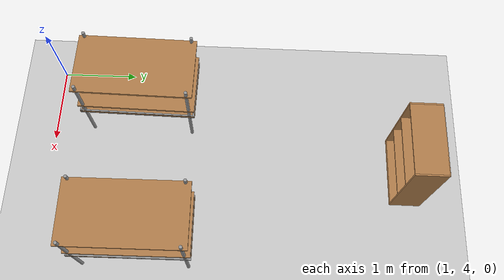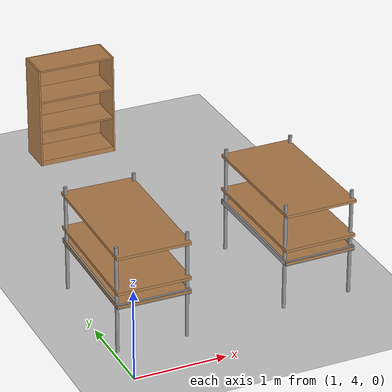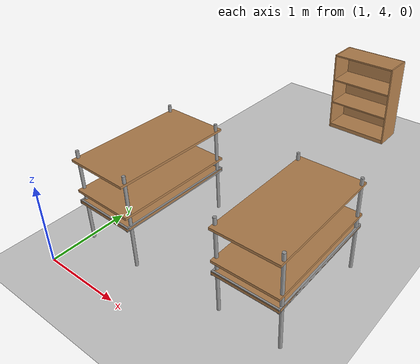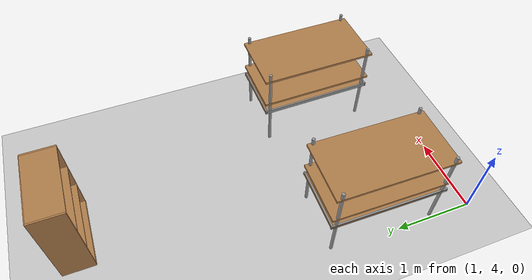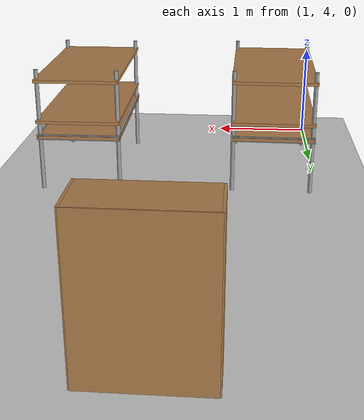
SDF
<sdf version="1.7">
 <world name="default">
  <model name="ground_plane">
   <static>1</static>
   <link name="link">
    <collision name="collision">
     <geometry><plane><normal>0 0 1</normal><size>100 100</size></plane></geometry>
     <surface><friction><ode><mu>100</mu><mu2>50</mu2></ode></friction></surface>
    </collision>
    <visual name="visual">
     <cast_shadows>0</cast_shadows>
     <geometry><plane><normal>0 0 1</normal><size>100 100</size></plane></geometry>
     <material>
      <script><uri>file://media/materials/scripts/gazebo.material</uri><name>Gazebo/Grey</name></script>
     </material>
    </visual>
   </link>
  </model>
  <model name="warehouse_pallet_clone_0_clone_2_clone_1">
   <link name="warehouse_pallet::link">
    <pose>0 0 -0 0 -0 1.57</pose>
    <inertial>
     <inertia>
      <ixx>0.0267042</ixx>
      <ixy>0</ixy>
      <ixz>0</ixz>
      <iyy>0.0937875</iyy>
      <iyz>0</iyz>
      <izz>0.120417</izz>
     </inertia>
     <mass>0.5</mass>
    </inertial>
    <visual name="holding1_visual">
     <pose>0 0.39 0.45 0 -0 0</pose>
     <geometry><box><size>1.5 0.02 0.05</size></box></geometry>
     <material>
      <script><uri>file://media/materials/scripts/gazebo.material</uri><name>Gazebo/Grey</name></script>
      <shader type="pixel"><normal_map>__default__</normal_map></shader>
      <ambient>0.3 0.3 0.3 1</ambient>
      <diffuse>0.7 0.7 0.7 1</diffuse>
      <specular>0.01 0.01 0.01 1</specular>
      <emissive>0 0 0 1</emissive>
     </material>
    </visual>
    <visual name="front_left_leg">
     <pose>0.68 0.38 0.5 0 -0 0</pose>
     <geometry><cylinder><radius>0.02</radius><length>1.2</length></cylinder></geometry>
     <material>
      <script><uri>file://media/materials/scripts/gazebo.material</uri><name>Gazebo/Grey</name></script>
      <shader type="pixel"><normal_map>__default__</normal_map></shader>
      <ambient>0.3 0.3 0.3 1</ambient>
      <diffuse>0.7 0.7 0.7 1</diffuse>
      <specular>0.01 0.01 0.01 1</specular>
      <emissive>0 0 0 1</emissive>
     </material>
    </visual>
    <visual name="front_right_leg">
     <pose>0.68 -0.38 0.5 0 -0 0</pose>
     <geometry><cylinder><radius>0.02</radius><length>1.2</length></cylinder></geometry>
     <material>
      <script><uri>file://media/materials/scripts/gazebo.material</uri><name>Gazebo/Grey</name></script>
      <shader type="pixel"><normal_map>__default__</normal_map></shader>
      <ambient>0.3 0.3 0.3 1</ambient>
      <diffuse>0.7 0.7 0.7 1</diffuse>
      <specular>0.01 0.01 0.01 1</specular>
      <emissive>0 0 0 1</emissive>
     </material>
    </visual>
    <visual name="back_right_leg">
     <pose>-0.68 -0.38 0.5 0 -0 0</pose>
     <geometry><cylinder><radius>0.02</radius><length>1.2</length></cylinder></geometry>
     <material>
      <script><uri>file://media/materials/scripts/gazebo.material</uri><name>Gazebo/Grey</name></script>
      <shader type="pixel"><normal_map>__default__</normal_map></shader>
      <ambient>0.3 0.3 0.3 1</ambient>
      <diffuse>0.7 0.7 0.7 1</diffuse>
      <specular>0.01 0.01 0.01 1</specular>
      <emissive>0 0 0 1</emissive>
     </material>
    </visual>
    <visual name="back_left_leg">
     <pose>-0.68 0.38 0.5 0 -0 0</pose>
     <geometry><cylinder><radius>0.02</radius><length>1.2</length></cylinder></geometry>
     <material>
      <script><uri>file://media/materials/scripts/gazebo.material</uri><name>Gazebo/Grey</name></script>
      <shader type="pixel"><normal_map>__default__</normal_map></shader>
      <ambient>0.3 0.3 0.3 1</ambient>
      <diffuse>0.7 0.7 0.7 1</diffuse>
      <specular>0.01 0.01 0.01 1</specular>
      <emissive>0 0 0 1</emissive>
     </material>
    </visual>
    <visual name="visual1">
     <pose>0 0 0.45 0 -0 0</pose>
     <geometry><box><size>1.5 0.8 0.03</size></box></geometry>
     <material>
      <script><uri>file://media/materials/scripts/gazebo.material</uri><name>Gazebo/Wood</name></script>
      <shader type="pixel"><normal_map>__default__</normal_map></shader>
      <ambient>1 1 1 1</ambient>
      <diffuse>1 1 1 1</diffuse>
      <specular>0.2 0.2 0.2 1</specular>
      <emissive>0 0 0 1</emissive>
     </material>
    </visual>
    <visual name="holding2_visual">
     <pose>0 -0.39 0.45 0 -0 0</pose>
     <geometry><box><size>1.5 0.02 0.05</size></box></geometry>
     <material>
      <script><uri>file://media/materials/scripts/gazebo.material</uri><name>Gazebo/Grey</name></script>
      <shader type="pixel"><normal_map>__default__</normal_map></shader>
      <ambient>0.3 0.3 0.3 1</ambient>
      <diffuse>0.7 0.7 0.7 1</diffuse>
      <specular>0.01 0.01 0.01 1</specular>
      <emissive>0 0 0 1</emissive>
     </material>
    </visual>
    <visual name="holding3_visual">
     <pose>0.735 0 0.45 0 -0 1.57</pose>
     <geometry><box><size>0.8 0.02 0.05</size></box></geometry>
     <material>
      <script><uri>file://media/materials/scripts/gazebo.material</uri><name>Gazebo/Grey</name></script>
      <shader type="pixel"><normal_map>__default__</normal_map></shader>
      <ambient>0.3 0.3 0.3 1</ambient>
      <diffuse>0.7 0.7 0.7 1</diffuse>
      <specular>0.01 0.01 0.01 1</specular>
      <emissive>0 0 0 1</emissive>
     </material>
    </visual>
    <visual name="holding4_visual">
     <pose>-0.735 0 0.45 0 -0 1.57</pose>
     <geometry><box><size>0.8 0.02 0.05</size></box></geometry>
     <material>
      <script><uri>file://media/materials/scripts/gazebo.material</uri><name>Gazebo/Grey</name></script>
      <shader type="pixel"><normal_map>__default__</normal_map></shader>
      <ambient>0.3 0.3 0.3 1</ambient>
      <diffuse>0.7 0.7 0.7 1</diffuse>
      <specular>0.01 0.01 0.01 1</specular>
      <emissive>0 0 0 1</emissive>
     </material>
    </visual>
    <visual name="visual2">
     <pose>0 0 0.6 0 -0 0</pose>
     <geometry><box><size>1.5 0.8 0.03</size></box></geometry>
     <material>
      <script><uri>file://media/materials/scripts/gazebo.material</uri><name>Gazebo/Wood</name></script>
      <shader type="pixel"><normal_map>__default__</normal_map></shader>
      <ambient>1 1 1 1</ambient>
      <diffuse>1 1 1 1</diffuse>
      <specular>0.2 0.2 0.2 1</specular>
      <emissive>0 0 0 1</emissive>
     </material>
    </visual>
    <visual name="visual3">
     <pose>0 0 1 0 -0 0</pose>
     <geometry><box><size>1.5 0.8 0.03</size></box></geometry>
     <material>
      <script><uri>file://media/materials/scripts/gazebo.material</uri><name>Gazebo/Wood</name></script>
      <shader type="pixel"><normal_map>__default__</normal_map></shader>
      <ambient>1 1 1 1</ambient>
      <diffuse>1 1 1 1</diffuse>
      <specular>0.2 0.2 0.2 1</specular>
      <emissive>0 0 0 1</emissive>
     </material>
    </visual>
    <collision name="surface1">
     <pose>0 0 0.45 0 -0 0</pose>
     <geometry><box><size>1.5 0.8 0.03</size></box></geometry>
     <surface>
      <friction>
       <ode><mu>20</mu><mu2>20</mu2><fdir1>0 0 0</fdir1><slip1>0</slip1><slip2>0</slip2></ode>
       <torsional>
        <coefficient>1</coefficient>
        <patch_radius>0</patch_radius>
        <surface_radius>0</surface_radius>
        <use_patch_radius>1</use_patch_radius>
        <ode><slip>0</slip></ode>
       </torsional>
      </friction>
      <bounce><restitution_coefficient>0</restitution_coefficient><threshold>1e+06</threshold></bounce>
      <contact>
       <collide_without_contact>0</collide_without_contact>
       <collide_without_contact_bitmask>1</collide_without_contact_bitmask>
       <collide_bitmask>1</collide_bitmask>
       <ode>
        <soft_cfm>0</soft_cfm>
        <soft_erp>0.2</soft_erp>
        <kp>1e+13</kp>
        <kd>1</kd>
        <max_vel>0.01</max_vel>
        <min_depth>0</min_depth>
       </ode>
       <bullet>
        <split_impulse>1</split_impulse>
        <split_impulse_penetration_threshold>-0.01</split_impulse_penetration_threshold>
        <soft_cfm>0</soft_cfm>
        <soft_erp>0.2</soft_erp>
        <kp>1e+13</kp>
        <kd>1</kd>
       </bullet>
      </contact>
     </surface>
    </collision>
    <collision name="holding1_collision">
     <pose>0 0.39 0.45 0 -0 0</pose>
     <geometry><box><size>1.5 0.02 0.05</size></box></geometry>
     <surface>
      <friction>
       <ode><mu>1e+09</mu><mu2>1e+09</mu2><fdir1>0 0 0</fdir1><slip1>0</slip1><slip2>0</slip2></ode>
       <torsional>
        <coefficient>1</coefficient>
        <patch_radius>0</patch_radius>
        <surface_radius>0</surface_radius>
        <use_patch_radius>1</use_patch_radius>
        <ode><slip>0</slip></ode>
       </torsional>
      </friction>
      <bounce><restitution_coefficient>0</restitution_coefficient><threshold>1e+06</threshold></bounce>
      <contact>
       <collide_without_contact>0</collide_without_contact>
       <collide_without_contact_bitmask>1</collide_without_contact_bitmask>
       <collide_bitmask>1</collide_bitmask>
       <ode>
        <soft_cfm>0</soft_cfm>
        <soft_erp>0.2</soft_erp>
        <kp>1e+13</kp>
        <kd>1</kd>
        <max_vel>0.01</max_vel>
        <min_depth>0</min_depth>
       </ode>
       <bullet>
        <split_impulse>1</split_impulse>
        <split_impulse_penetration_threshold>-0.01</split_impulse_penetration_threshold>
        <soft_cfm>0</soft_cfm>
        <soft_erp>0.2</soft_erp>
        <kp>1e+13</kp>
        <kd>1</kd>
       </bullet>
      </contact>
     </surface>
    </collision>
    <collision name="holding2_collision">
     <pose>0 -0.39 0.45 0 -0 0</pose>
     <geometry><box><size>1.5 0.02 0.05</size></box></geometry>
     <surface>
      <friction>
       <ode><mu>1e+09</mu><mu2>1e+09</mu2><fdir1>0 0 0</fdir1><slip1>0</slip1><slip2>0</slip2></ode>
       <torsional>
        <coefficient>1</coefficient>
        <patch_radius>0</patch_radius>
        <surface_radius>0</surface_radius>
        <use_patch_radius>1</use_patch_radius>
        <ode><slip>0</slip></ode>
       </torsional>
      </friction>
      <bounce><restitution_coefficient>0</restitution_coefficient><threshold>1e+06</threshold></bounce>
      <contact>
       <collide_without_contact>0</collide_without_contact>
       <collide_without_contact_bitmask>1</collide_without_contact_bitmask>
       <collide_bitmask>1</collide_bitmask>
       <ode>
        <soft_cfm>0</soft_cfm>
        <soft_erp>0.2</soft_erp>
        <kp>1e+13</kp>
        <kd>1</kd>
        <max_vel>0.01</max_vel>
        <min_depth>0</min_depth>
       </ode>
       <bullet>
        <split_impulse>1</split_impulse>
        <split_impulse_penetration_threshold>-0.01</split_impulse_penetration_threshold>
        <soft_cfm>0</soft_cfm>
        <soft_erp>0.2</soft_erp>
        <kp>1e+13</kp>
        <kd>1</kd>
       </bullet>
      </contact>
     </surface>
    </collision>
    <collision name="holding3_collision">
     <pose>0.735 0 0.45 0 -0 1.57</pose>
     <geometry><box><size>0.8 0.02 0.05</size></box></geometry>
     <surface>
      <friction>
       <ode><mu>1e+09</mu><mu2>1e+09</mu2><fdir1>0 0 0</fdir1><slip1>0</slip1><slip2>0</slip2></ode>
       <torsional>
        <coefficient>1</coefficient>
        <patch_radius>0</patch_radius>
        <surface_radius>0</surface_radius>
        <use_patch_radius>1</use_patch_radius>
        <ode><slip>0</slip></ode>
       </torsional>
      </friction>
      <bounce><restitution_coefficient>0</restitution_coefficient><threshold>1e+06</threshold></bounce>
      <contact>
       <collide_without_contact>0</collide_without_contact>
       <collide_without_contact_bitmask>1</collide_without_contact_bitmask>
       <collide_bitmask>1</collide_bitmask>
       <ode>
        <soft_cfm>0</soft_cfm>
        <soft_erp>0.2</soft_erp>
        <kp>1e+13</kp>
        <kd>1</kd>
        <max_vel>0.01</max_vel>
        <min_depth>0</min_depth>
       </ode>
       <bullet>
        <split_impulse>1</split_impulse>
        <split_impulse_penetration_threshold>-0.01</split_impulse_penetration_threshold>
        <soft_cfm>0</soft_cfm>
        <soft_erp>0.2</soft_erp>
        <kp>1e+13</kp>
        <kd>1</kd>
       </bullet>
      </contact>
     </surface>
    </collision>
    <collision name="holding4_collision">
     <pose>-0.735 0 0.45 0 -0 1.57</pose>
     <geometry><box><size>0.8 0.02 0.05</size></box></geometry>
     <surface>
      <friction>
       <ode><mu>1e+09</mu><mu2>1e+09</mu2><fdir1>0 0 0</fdir1><slip1>0</slip1><slip2>0</slip2></ode>
       <torsional>
        <coefficient>1</coefficient>
        <patch_radius>0</patch_radius>
        <surface_radius>0</surface_radius>
        <use_patch_radius>1</use_patch_radius>
        <ode><slip>0</slip></ode>
       </torsional>
      </friction>
      <bounce><restitution_coefficient>0</restitution_coefficient><threshold>1e+06</threshold></bounce>
      <contact>
       <collide_without_contact>0</collide_without_contact>
       <collide_without_contact_bitmask>1</collide_without_contact_bitmask>
       <collide_bitmask>1</collide_bitmask>
       <ode>
        <soft_cfm>0</soft_cfm>
        <soft_erp>0.2</soft_erp>
        <kp>1e+13</kp>
        <kd>1</kd>
        <max_vel>0.01</max_vel>
        <min_depth>0</min_depth>
       </ode>
       <bullet>
        <split_impulse>1</split_impulse>
        <split_impulse_penetration_threshold>-0.01</split_impulse_penetration_threshold>
        <soft_cfm>0</soft_cfm>
        <soft_erp>0.2</soft_erp>
        <kp>1e+13</kp>
        <kd>1</kd>
       </bullet>
      </contact>
     </surface>
    </collision>
    <collision name="surface3">
     <pose>0 0 1 0 -0 0</pose>
     <geometry><box><size>1.5 0.8 0.03</size></box></geometry>
     <surface>
      <friction>
       <ode><mu>2.5</mu><mu2>2.5</mu2><fdir1>0 0 0</fdir1><slip1>0</slip1><slip2>0</slip2></ode>
       <torsional>
        <coefficient>1</coefficient>
        <patch_radius>0</patch_radius>
        <surface_radius>0</surface_radius>
        <use_patch_radius>1</use_patch_radius>
        <ode><slip>0</slip></ode>
       </torsional>
      </friction>
      <bounce><restitution_coefficient>0</restitution_coefficient><threshold>1e+06</threshold></bounce>
      <contact>
       <collide_without_contact>0</collide_without_contact>
       <collide_without_contact_bitmask>1</collide_without_contact_bitmask>
       <collide_bitmask>1</collide_bitmask>
       <ode>
        <soft_cfm>0</soft_cfm>
        <soft_erp>0.2</soft_erp>
        <kp>1e+13</kp>
        <kd>1</kd>
        <max_vel>0.01</max_vel>
        <min_depth>0</min_depth>
       </ode>
       <bullet>
        <split_impulse>1</split_impulse>
        <split_impulse_penetration_threshold>-0.01</split_impulse_penetration_threshold>
        <soft_cfm>0</soft_cfm>
        <soft_erp>0.2</soft_erp>
        <kp>1e+13</kp>
        <kd>1</kd>
       </bullet>
      </contact>
     </surface>
    </collision>
    <collision name="surface2">
     <pose>0 0 0.6 0 -0 0</pose>
     <geometry><box><size>1.5 0.8 0.03</size></box></geometry>
     <surface>
      <friction>
       <ode><mu>2.5</mu><mu2>2.5</mu2><fdir1>0 0 0</fdir1><slip1>0</slip1><slip2>0</slip2></ode>
       <torsional>
        <coefficient>1</coefficient>
        <patch_radius>0</patch_radius>
        <surface_radius>0</surface_radius>
        <use_patch_radius>1</use_patch_radius>
        <ode><slip>0</slip></ode>
       </torsional>
      </friction>
      <bounce><restitution_coefficient>0</restitution_coefficient><threshold>1e+06</threshold></bounce>
      <contact>
       <collide_without_contact>0</collide_without_contact>
       <collide_without_contact_bitmask>1</collide_without_contact_bitmask>
       <collide_bitmask>1</collide_bitmask>
       <ode>
        <soft_cfm>0</soft_cfm>
        <soft_erp>0.2</soft_erp>
        <kp>1e+13</kp>
        <kd>1</kd>
        <max_vel>0.01</max_vel>
        <min_depth>0</min_depth>
       </ode>
       <bullet>
        <split_impulse>1</split_impulse>
        <split_impulse_penetration_threshold>-0.01</split_impulse_penetration_threshold>
        <soft_cfm>0</soft_cfm>
        <soft_erp>0.2</soft_erp>
        <kp>1e+13</kp>
        <kd>1</kd>
       </bullet>
      </contact>
     </surface>
    </collision>
    <collision name="front_right_leg">
     <pose>0.68 -0.38 0.5 0 -0 0</pose>
     <geometry><cylinder><radius>0.02</radius><length>1</length></cylinder></geometry>
     <surface>
      <friction>
       <ode><mu>1</mu><mu2>1.2</mu2><fdir1>0 0 0</fdir1><slip1>0</slip1><slip2>0</slip2></ode>
       <torsional>
        <coefficient>1</coefficient>
        <patch_radius>0</patch_radius>
        <surface_radius>0</surface_radius>
        <use_patch_radius>1</use_patch_radius>
        <ode><slip>0</slip></ode>
       </torsional>
      </friction>
      <bounce><restitution_coefficient>0</restitution_coefficient><threshold>1e+06</threshold></bounce>
      <contact>
       <collide_without_contact>0</collide_without_contact>
       <collide_without_contact_bitmask>1</collide_without_contact_bitmask>
       <collide_bitmask>1</collide_bitmask>
       <ode>
        <soft_cfm>0</soft_cfm>
        <soft_erp>0.2</soft_erp>
        <kp>1e+13</kp>
        <kd>1</kd>
        <max_vel>0.01</max_vel>
        <min_depth>0</min_depth>
       </ode>
       <bullet>
        <split_impulse>1</split_impulse>
        <split_impulse_penetration_threshold>-0.01</split_impulse_penetration_threshold>
        <soft_cfm>0</soft_cfm>
        <soft_erp>0.2</soft_erp>
        <kp>1e+13</kp>
        <kd>1</kd>
       </bullet>
      </contact>
     </surface>
    </collision>
    <collision name="back_right_leg">
     <pose>-0.68 -0.38 0.5 0 -0 0</pose>
     <geometry><cylinder><radius>0.02</radius><length>1.2</length></cylinder></geometry>
     <surface>
      <friction>
       <ode><mu>1</mu><mu2>1</mu2><fdir1>0 0 0</fdir1><slip1>0</slip1><slip2>0</slip2></ode>
       <torsional>
        <coefficient>1</coefficient>
        <patch_radius>0</patch_radius>
        <surface_radius>0</surface_radius>
        <use_patch_radius>1</use_patch_radius>
        <ode><slip>0</slip></ode>
       </torsional>
      </friction>
      <bounce><restitution_coefficient>0</restitution_coefficient><threshold>1e+06</threshold></bounce>
      <contact>
       <collide_without_contact>0</collide_without_contact>
       <collide_without_contact_bitmask>1</collide_without_contact_bitmask>
       <collide_bitmask>1</collide_bitmask>
       <ode>
        <soft_cfm>0</soft_cfm>
        <soft_erp>0.2</soft_erp>
        <kp>1e+13</kp>
        <kd>1</kd>
        <max_vel>0.01</max_vel>
        <min_depth>0</min_depth>
       </ode>
       <bullet>
        <split_impulse>1</split_impulse>
        <split_impulse_penetration_threshold>-0.01</split_impulse_penetration_threshold>
        <soft_cfm>0</soft_cfm>
        <soft_erp>0.2</soft_erp>
        <kp>1e+13</kp>
        <kd>1</kd>
       </bullet>
      </contact>
     </surface>
    </collision>
    <collision name="front_left_leg">
     <pose>0.68 0.38 0.5 0 -0 0</pose>
     <geometry><cylinder><radius>0.02</radius><length>1.2</length></cylinder></geometry>
     <surface>
      <friction>
       <ode><mu>1</mu><mu2>1</mu2><fdir1>0 0 0</fdir1><slip1>0</slip1><slip2>0</slip2></ode>
       <torsional>
        <coefficient>1</coefficient>
        <patch_radius>0</patch_radius>
        <surface_radius>0</surface_radius>
        <use_patch_radius>1</use_patch_radius>
        <ode><slip>0</slip></ode>
       </torsional>
      </friction>
      <bounce><restitution_coefficient>0</restitution_coefficient><threshold>1e+06</threshold></bounce>
      <contact>
       <collide_without_contact>0</collide_without_contact>
       <collide_without_contact_bitmask>1</collide_without_contact_bitmask>
       <collide_bitmask>1</collide_bitmask>
       <ode>
        <soft_cfm>0</soft_cfm>
        <soft_erp>0.2</soft_erp>
        <kp>1e+13</kp>
        <kd>1</kd>
        <max_vel>0.01</max_vel>
        <min_depth>0</min_depth>
       </ode>
       <bullet>
        <split_impulse>1</split_impulse>
        <split_impulse_penetration_threshold>-0.01</split_impulse_penetration_threshold>
        <soft_cfm>0</soft_cfm>
        <soft_erp>0.2</soft_erp>
        <kp>1e+13</kp>
        <kd>1</kd>
       </bullet>
      </contact>
     </surface>
    </collision>
    <collision name="back_left_leg">
     <pose>-0.68 0.38 0.5 0 -0 0</pose>
     <geometry><cylinder><radius>0.02</radius><length>1.2</length></cylinder></geometry>
     <surface>
      <friction>
       <ode><mu>1</mu><mu2>1</mu2><fdir1>0 0 0</fdir1><slip1>0</slip1><slip2>0</slip2></ode>
       <torsional>
        <coefficient>1</coefficient>
        <patch_radius>0</patch_radius>
        <surface_radius>0</surface_radius>
        <use_patch_radius>1</use_patch_radius>
        <ode><slip>0</slip></ode>
       </torsional>
      </friction>
      <bounce><restitution_coefficient>0</restitution_coefficient><threshold>1e+06</threshold></bounce>
      <contact>
       <collide_without_contact>0</collide_without_contact>
       <collide_without_contact_bitmask>1</collide_without_contact_bitmask>
       <collide_bitmask>1</collide_bitmask>
       <ode>
        <soft_cfm>0</soft_cfm>
        <soft_erp>0.2</soft_erp>
        <kp>1e+13</kp>
        <kd>1</kd>
        <max_vel>0.01</max_vel>
        <min_depth>0</min_depth>
       </ode>
       <bullet>
        <split_impulse>1</split_impulse>
        <split_impulse_penetration_threshold>-0.01</split_impulse_penetration_threshold>
        <soft_cfm>0</soft_cfm>
        <soft_erp>0.2</soft_erp>
        <kp>1e+13</kp>
        <kd>1</kd>
       </bullet>
      </contact>
     </surface>
    </collision>
   </link>
   <static>0</static>
   <pose>1.43895 5.20765 0.099965 -9.6e-05 7.5e-05 -0.015264</pose>
  </model>
  <model name="warehouse_pallet_clone_0_clone_2_clone_5">
   <link name="warehouse_pallet::link">
    <pose>0 0 -0 0 -0 1.57</pose>
    <inertial>
     <inertia>
      <ixx>0.0267042</ixx>
      <ixy>0</ixy>
      <ixz>0</ixz>
      <iyy>0.0937875</iyy>
      <iyz>0</iyz>
      <izz>0.120417</izz>
     </inertia>
     <mass>0.5</mass>
    </inertial>
    <visual name="holding1_visual">
     <pose>0 0.39 0.45 0 -0 0</pose>
     <geometry><box><size>1.5 0.02 0.05</size></box></geometry>
     <material>
      <script><uri>file://media/materials/scripts/gazebo.material</uri><name>Gazebo/Grey</name></script>
      <shader type="pixel"><normal_map>__default__</normal_map></shader>
      <ambient>0.3 0.3 0.3 1</ambient>
      <diffuse>0.7 0.7 0.7 1</diffuse>
      <specular>0.01 0.01 0.01 1</specular>
      <emissive>0 0 0 1</emissive>
     </material>
    </visual>
    <visual name="front_left_leg">
     <pose>0.68 0.38 0.5 0 -0 0</pose>
     <geometry><cylinder><radius>0.02</radius><length>1.2</length></cylinder></geometry>
     <material>
      <script><uri>file://media/materials/scripts/gazebo.material</uri><name>Gazebo/Grey</name></script>
      <shader type="pixel"><normal_map>__default__</normal_map></shader>
      <ambient>0.3 0.3 0.3 1</ambient>
      <diffuse>0.7 0.7 0.7 1</diffuse>
      <specular>0.01 0.01 0.01 1</specular>
      <emissive>0 0 0 1</emissive>
     </material>
    </visual>
    <visual name="front_right_leg">
     <pose>0.68 -0.38 0.5 0 -0 0</pose>
     <geometry><cylinder><radius>0.02</radius><length>1.2</length></cylinder></geometry>
     <material>
      <script><uri>file://media/materials/scripts/gazebo.material</uri><name>Gazebo/Grey</name></script>
      <shader type="pixel"><normal_map>__default__</normal_map></shader>
      <ambient>0.3 0.3 0.3 1</ambient>
      <diffuse>0.7 0.7 0.7 1</diffuse>
      <specular>0.01 0.01 0.01 1</specular>
      <emissive>0 0 0 1</emissive>
     </material>
    </visual>
    <visual name="back_right_leg">
     <pose>-0.68 -0.38 0.5 0 -0 0</pose>
     <geometry><cylinder><radius>0.02</radius><length>1.2</length></cylinder></geometry>
     <material>
      <script><uri>file://media/materials/scripts/gazebo.material</uri><name>Gazebo/Grey</name></script>
      <shader type="pixel"><normal_map>__default__</normal_map></shader>
      <ambient>0.3 0.3 0.3 1</ambient>
      <diffuse>0.7 0.7 0.7 1</diffuse>
      <specular>0.01 0.01 0.01 1</specular>
      <emissive>0 0 0 1</emissive>
     </material>
    </visual>
    <visual name="back_left_leg">
     <pose>-0.68 0.38 0.5 0 -0 0</pose>
     <geometry><cylinder><radius>0.02</radius><length>1.2</length></cylinder></geometry>
     <material>
      <script><uri>file://media/materials/scripts/gazebo.material</uri><name>Gazebo/Grey</name></script>
      <shader type="pixel"><normal_map>__default__</normal_map></shader>
      <ambient>0.3 0.3 0.3 1</ambient>
      <diffuse>0.7 0.7 0.7 1</diffuse>
      <specular>0.01 0.01 0.01 1</specular>
      <emissive>0 0 0 1</emissive>
     </material>
    </visual>
    <visual name="visual1">
     <pose>0 0 0.45 0 -0 0</pose>
     <geometry><box><size>1.5 0.8 0.03</size></box></geometry>
     <material>
      <script><uri>file://media/materials/scripts/gazebo.material</uri><name>Gazebo/Wood</name></script>
      <shader type="pixel"><normal_map>__default__</normal_map></shader>
      <ambient>1 1 1 1</ambient>
      <diffuse>1 1 1 1</diffuse>
      <specular>0.2 0.2 0.2 1</specular>
      <emissive>0 0 0 1</emissive>
     </material>
    </visual>
    <visual name="holding2_visual">
     <pose>0 -0.39 0.45 0 -0 0</pose>
     <geometry><box><size>1.5 0.02 0.05</size></box></geometry>
     <material>
      <script><uri>file://media/materials/scripts/gazebo.material</uri><name>Gazebo/Grey</name></script>
      <shader type="pixel"><normal_map>__default__</normal_map></shader>
      <ambient>0.3 0.3 0.3 1</ambient>
      <diffuse>0.7 0.7 0.7 1</diffuse>
      <specular>0.01 0.01 0.01 1</specular>
      <emissive>0 0 0 1</emissive>
     </material>
    </visual>
    <visual name="holding3_visual">
     <pose>0.735 0 0.45 0 -0 1.57</pose>
     <geometry><box><size>0.8 0.02 0.05</size></box></geometry>
     <material>
      <script><uri>file://media/materials/scripts/gazebo.material</uri><name>Gazebo/Grey</name></script>
      <shader type="pixel"><normal_map>__default__</normal_map></shader>
      <ambient>0.3 0.3 0.3 1</ambient>
      <diffuse>0.7 0.7 0.7 1</diffuse>
      <specular>0.01 0.01 0.01 1</specular>
      <emissive>0 0 0 1</emissive>
     </material>
    </visual>
    <visual name="holding4_visual">
     <pose>-0.735 0 0.45 0 -0 1.57</pose>
     <geometry><box><size>0.8 0.02 0.05</size></box></geometry>
     <material>
      <script><uri>file://media/materials/scripts/gazebo.material</uri><name>Gazebo/Grey</name></script>
      <shader type="pixel"><normal_map>__default__</normal_map></shader>
      <ambient>0.3 0.3 0.3 1</ambient>
      <diffuse>0.7 0.7 0.7 1</diffuse>
      <specular>0.01 0.01 0.01 1</specular>
      <emissive>0 0 0 1</emissive>
     </material>
    </visual>
    <visual name="visual2">
     <pose>0 0 0.6 0 -0 0</pose>
     <geometry><box><size>1.5 0.8 0.03</size></box></geometry>
     <material>
      <script><uri>file://media/materials/scripts/gazebo.material</uri><name>Gazebo/Wood</name></script>
      <shader type="pixel"><normal_map>__default__</normal_map></shader>
      <ambient>1 1 1 1</ambient>
      <diffuse>1 1 1 1</diffuse>
      <specular>0.2 0.2 0.2 1</specular>
      <emissive>0 0 0 1</emissive>
     </material>
    </visual>
    <visual name="visual3">
     <pose>0 0 1 0 -0 0</pose>
     <geometry><box><size>1.5 0.8 0.03</size></box></geometry>
     <material>
      <script><uri>file://media/materials/scripts/gazebo.material</uri><name>Gazebo/Wood</name></script>
      <shader type="pixel"><normal_map>__default__</normal_map></shader>
      <ambient>1 1 1 1</ambient>
      <diffuse>1 1 1 1</diffuse>
      <specular>0.2 0.2 0.2 1</specular>
      <emissive>0 0 0 1</emissive>
     </material>
    </visual>
    <collision name="surface1">
     <pose>0 0 0.45 0 -0 0</pose>
     <geometry><box><size>1.5 0.8 0.03</size></box></geometry>
     <surface>
      <friction>
       <ode><mu>20</mu><mu2>20</mu2><fdir1>0 0 0</fdir1><slip1>0</slip1><slip2>0</slip2></ode>
       <torsional>
        <coefficient>1</coefficient>
        <patch_radius>0</patch_radius>
        <surface_radius>0</surface_radius>
        <use_patch_radius>1</use_patch_radius>
        <ode><slip>0</slip></ode>
       </torsional>
      </friction>
      <bounce><restitution_coefficient>0</restitution_coefficient><threshold>1e+06</threshold></bounce>
      <contact>
       <collide_without_contact>0</collide_without_contact>
       <collide_without_contact_bitmask>1</collide_without_contact_bitmask>
       <collide_bitmask>1</collide_bitmask>
       <ode>
        <soft_cfm>0</soft_cfm>
        <soft_erp>0.2</soft_erp>
        <kp>1e+13</kp>
        <kd>1</kd>
        <max_vel>0.01</max_vel>
        <min_depth>0</min_depth>
       </ode>
       <bullet>
        <split_impulse>1</split_impulse>
        <split_impulse_penetration_threshold>-0.01</split_impulse_penetration_threshold>
        <soft_cfm>0</soft_cfm>
        <soft_erp>0.2</soft_erp>
        <kp>1e+13</kp>
        <kd>1</kd>
       </bullet>
      </contact>
     </surface>
    </collision>
    <collision name="holding1_collision">
     <pose>0 0.39 0.45 0 -0 0</pose>
     <geometry><box><size>1.5 0.02 0.05</size></box></geometry>
     <surface>
      <friction>
       <ode><mu>1e+09</mu><mu2>1e+09</mu2><fdir1>0 0 0</fdir1><slip1>0</slip1><slip2>0</slip2></ode>
       <torsional>
        <coefficient>1</coefficient>
        <patch_radius>0</patch_radius>
        <surface_radius>0</surface_radius>
        <use_patch_radius>1</use_patch_radius>
        <ode><slip>0</slip></ode>
       </torsional>
      </friction>
      <bounce><restitution_coefficient>0</restitution_coefficient><threshold>1e+06</threshold></bounce>
      <contact>
       <collide_without_contact>0</collide_without_contact>
       <collide_without_contact_bitmask>1</collide_without_contact_bitmask>
       <collide_bitmask>1</collide_bitmask>
       <ode>
        <soft_cfm>0</soft_cfm>
        <soft_erp>0.2</soft_erp>
        <kp>1e+13</kp>
        <kd>1</kd>
        <max_vel>0.01</max_vel>
        <min_depth>0</min_depth>
       </ode>
       <bullet>
        <split_impulse>1</split_impulse>
        <split_impulse_penetration_threshold>-0.01</split_impulse_penetration_threshold>
        <soft_cfm>0</soft_cfm>
        <soft_erp>0.2</soft_erp>
        <kp>1e+13</kp>
        <kd>1</kd>
       </bullet>
      </contact>
     </surface>
    </collision>
    <collision name="holding2_collision">
     <pose>0 -0.39 0.45 0 -0 0</pose>
     <geometry><box><size>1.5 0.02 0.05</size></box></geometry>
     <surface>
      <friction>
       <ode><mu>1e+09</mu><mu2>1e+09</mu2><fdir1>0 0 0</fdir1><slip1>0</slip1><slip2>0</slip2></ode>
       <torsional>
        <coefficient>1</coefficient>
        <patch_radius>0</patch_radius>
        <surface_radius>0</surface_radius>
        <use_patch_radius>1</use_patch_radius>
        <ode><slip>0</slip></ode>
       </torsional>
      </friction>
      <bounce><restitution_coefficient>0</restitution_coefficient><threshold>1e+06</threshold></bounce>
      <contact>
       <collide_without_contact>0</collide_without_contact>
       <collide_without_contact_bitmask>1</collide_without_contact_bitmask>
       <collide_bitmask>1</collide_bitmask>
       <ode>
        <soft_cfm>0</soft_cfm>
        <soft_erp>0.2</soft_erp>
        <kp>1e+13</kp>
        <kd>1</kd>
        <max_vel>0.01</max_vel>
        <min_depth>0</min_depth>
       </ode>
       <bullet>
        <split_impulse>1</split_impulse>
        <split_impulse_penetration_threshold>-0.01</split_impulse_penetration_threshold>
        <soft_cfm>0</soft_cfm>
        <soft_erp>0.2</soft_erp>
        <kp>1e+13</kp>
        <kd>1</kd>
       </bullet>
      </contact>
     </surface>
    </collision>
    <collision name="holding3_collision">
     <pose>0.735 0 0.45 0 -0 1.57</pose>
     <geometry><box><size>0.8 0.02 0.05</size></box></geometry>
     <surface>
      <friction>
       <ode><mu>1e+09</mu><mu2>1e+09</mu2><fdir1>0 0 0</fdir1><slip1>0</slip1><slip2>0</slip2></ode>
       <torsional>
        <coefficient>1</coefficient>
        <patch_radius>0</patch_radius>
        <surface_radius>0</surface_radius>
        <use_patch_radius>1</use_patch_radius>
        <ode><slip>0</slip></ode>
       </torsional>
      </friction>
      <bounce><restitution_coefficient>0</restitution_coefficient><threshold>1e+06</threshold></bounce>
      <contact>
       <collide_without_contact>0</collide_without_contact>
       <collide_without_contact_bitmask>1</collide_without_contact_bitmask>
       <collide_bitmask>1</collide_bitmask>
       <ode>
        <soft_cfm>0</soft_cfm>
        <soft_erp>0.2</soft_erp>
        <kp>1e+13</kp>
        <kd>1</kd>
        <max_vel>0.01</max_vel>
        <min_depth>0</min_depth>
       </ode>
       <bullet>
        <split_impulse>1</split_impulse>
        <split_impulse_penetration_threshold>-0.01</split_impulse_penetration_threshold>
        <soft_cfm>0</soft_cfm>
        <soft_erp>0.2</soft_erp>
        <kp>1e+13</kp>
        <kd>1</kd>
       </bullet>
      </contact>
     </surface>
    </collision>
    <collision name="holding4_collision">
     <pose>-0.735 0 0.45 0 -0 1.57</pose>
     <geometry><box><size>0.8 0.02 0.05</size></box></geometry>
     <surface>
      <friction>
       <ode><mu>1e+09</mu><mu2>1e+09</mu2><fdir1>0 0 0</fdir1><slip1>0</slip1><slip2>0</slip2></ode>
       <torsional>
        <coefficient>1</coefficient>
        <patch_radius>0</patch_radius>
        <surface_radius>0</surface_radius>
        <use_patch_radius>1</use_patch_radius>
        <ode><slip>0</slip></ode>
       </torsional>
      </friction>
      <bounce><restitution_coefficient>0</restitution_coefficient><threshold>1e+06</threshold></bounce>
      <contact>
       <collide_without_contact>0</collide_without_contact>
       <collide_without_contact_bitmask>1</collide_without_contact_bitmask>
       <collide_bitmask>1</collide_bitmask>
       <ode>
        <soft_cfm>0</soft_cfm>
        <soft_erp>0.2</soft_erp>
        <kp>1e+13</kp>
        <kd>1</kd>
        <max_vel>0.01</max_vel>
        <min_depth>0</min_depth>
       </ode>
       <bullet>
        <split_impulse>1</split_impulse>
        <split_impulse_penetration_threshold>-0.01</split_impulse_penetration_threshold>
        <soft_cfm>0</soft_cfm>
        <soft_erp>0.2</soft_erp>
        <kp>1e+13</kp>
        <kd>1</kd>
       </bullet>
      </contact>
     </surface>
    </collision>
    <collision name="surface3">
     <pose>0 0 1 0 -0 0</pose>
     <geometry><box><size>1.5 0.8 0.03</size></box></geometry>
     <surface>
      <friction>
       <ode><mu>2.5</mu><mu2>2.5</mu2><fdir1>0 0 0</fdir1><slip1>0</slip1><slip2>0</slip2></ode>
       <torsional>
        <coefficient>1</coefficient>
        <patch_radius>0</patch_radius>
        <surface_radius>0</surface_radius>
        <use_patch_radius>1</use_patch_radius>
        <ode><slip>0</slip></ode>
       </torsional>
      </friction>
      <bounce><restitution_coefficient>0</restitution_coefficient><threshold>1e+06</threshold></bounce>
      <contact>
       <collide_without_contact>0</collide_without_contact>
       <collide_without_contact_bitmask>1</collide_without_contact_bitmask>
       <collide_bitmask>1</collide_bitmask>
       <ode>
        <soft_cfm>0</soft_cfm>
        <soft_erp>0.2</soft_erp>
        <kp>1e+13</kp>
        <kd>1</kd>
        <max_vel>0.01</max_vel>
        <min_depth>0</min_depth>
       </ode>
       <bullet>
        <split_impulse>1</split_impulse>
        <split_impulse_penetration_threshold>-0.01</split_impulse_penetration_threshold>
        <soft_cfm>0</soft_cfm>
        <soft_erp>0.2</soft_erp>
        <kp>1e+13</kp>
        <kd>1</kd>
       </bullet>
      </contact>
     </surface>
    </collision>
    <collision name="surface2">
     <pose>0 0 0.6 0 -0 0</pose>
     <geometry><box><size>1.5 0.8 0.03</size></box></geometry>
     <surface>
      <friction>
       <ode><mu>2.5</mu><mu2>2.5</mu2><fdir1>0 0 0</fdir1><slip1>0</slip1><slip2>0</slip2></ode>
       <torsional>
        <coefficient>1</coefficient>
        <patch_radius>0</patch_radius>
        <surface_radius>0</surface_radius>
        <use_patch_radius>1</use_patch_radius>
        <ode><slip>0</slip></ode>
       </torsional>
      </friction>
      <bounce><restitution_coefficient>0</restitution_coefficient><threshold>1e+06</threshold></bounce>
      <contact>
       <collide_without_contact>0</collide_without_contact>
       <collide_without_contact_bitmask>1</collide_without_contact_bitmask>
       <collide_bitmask>1</collide_bitmask>
       <ode>
        <soft_cfm>0</soft_cfm>
        <soft_erp>0.2</soft_erp>
        <kp>1e+13</kp>
        <kd>1</kd>
        <max_vel>0.01</max_vel>
        <min_depth>0</min_depth>
       </ode>
       <bullet>
        <split_impulse>1</split_impulse>
        <split_impulse_penetration_threshold>-0.01</split_impulse_penetration_threshold>
        <soft_cfm>0</soft_cfm>
        <soft_erp>0.2</soft_erp>
        <kp>1e+13</kp>
        <kd>1</kd>
       </bullet>
      </contact>
     </surface>
    </collision>
    <collision name="front_right_leg">
     <pose>0.68 -0.38 0.5 0 -0 0</pose>
     <geometry><cylinder><radius>0.02</radius><length>1</length></cylinder></geometry>
     <surface>
      <friction>
       <ode><mu>1</mu><mu2>1.2</mu2><fdir1>0 0 0</fdir1><slip1>0</slip1><slip2>0</slip2></ode>
       <torsional>
        <coefficient>1</coefficient>
        <patch_radius>0</patch_radius>
        <surface_radius>0</surface_radius>
        <use_patch_radius>1</use_patch_radius>
        <ode><slip>0</slip></ode>
       </torsional>
      </friction>
      <bounce><restitution_coefficient>0</restitution_coefficient><threshold>1e+06</threshold></bounce>
      <contact>
       <collide_without_contact>0</collide_without_contact>
       <collide_without_contact_bitmask>1</collide_without_contact_bitmask>
       <collide_bitmask>1</collide_bitmask>
       <ode>
        <soft_cfm>0</soft_cfm>
        <soft_erp>0.2</soft_erp>
        <kp>1e+13</kp>
        <kd>1</kd>
        <max_vel>0.01</max_vel>
        <min_depth>0</min_depth>
       </ode>
       <bullet>
        <split_impulse>1</split_impulse>
        <split_impulse_penetration_threshold>-0.01</split_impulse_penetration_threshold>
        <soft_cfm>0</soft_cfm>
        <soft_erp>0.2</soft_erp>
        <kp>1e+13</kp>
        <kd>1</kd>
       </bullet>
      </contact>
     </surface>
    </collision>
    <collision name="back_right_leg">
     <pose>-0.68 -0.38 0.5 0 -0 0</pose>
     <geometry><cylinder><radius>0.02</radius><length>1.2</length></cylinder></geometry>
     <surface>
      <friction>
       <ode><mu>1</mu><mu2>1</mu2><fdir1>0 0 0</fdir1><slip1>0</slip1><slip2>0</slip2></ode>
       <torsional>
        <coefficient>1</coefficient>
        <patch_radius>0</patch_radius>
        <surface_radius>0</surface_radius>
        <use_patch_radius>1</use_patch_radius>
        <ode><slip>0</slip></ode>
       </torsional>
      </friction>
      <bounce><restitution_coefficient>0</restitution_coefficient><threshold>1e+06</threshold></bounce>
      <contact>
       <collide_without_contact>0</collide_without_contact>
       <collide_without_contact_bitmask>1</collide_without_contact_bitmask>
       <collide_bitmask>1</collide_bitmask>
       <ode>
        <soft_cfm>0</soft_cfm>
        <soft_erp>0.2</soft_erp>
        <kp>1e+13</kp>
        <kd>1</kd>
        <max_vel>0.01</max_vel>
        <min_depth>0</min_depth>
       </ode>
       <bullet>
        <split_impulse>1</split_impulse>
        <split_impulse_penetration_threshold>-0.01</split_impulse_penetration_threshold>
        <soft_cfm>0</soft_cfm>
        <soft_erp>0.2</soft_erp>
        <kp>1e+13</kp>
        <kd>1</kd>
       </bullet>
      </contact>
     </surface>
    </collision>
    <collision name="front_left_leg">
     <pose>0.68 0.38 0.5 0 -0 0</pose>
     <geometry><cylinder><radius>0.02</radius><length>1.2</length></cylinder></geometry>
     <surface>
      <friction>
       <ode><mu>1</mu><mu2>1</mu2><fdir1>0 0 0</fdir1><slip1>0</slip1><slip2>0</slip2></ode>
       <torsional>
        <coefficient>1</coefficient>
        <patch_radius>0</patch_radius>
        <surface_radius>0</surface_radius>
        <use_patch_radius>1</use_patch_radius>
        <ode><slip>0</slip></ode>
       </torsional>
      </friction>
      <bounce><restitution_coefficient>0</restitution_coefficient><threshold>1e+06</threshold></bounce>
      <contact>
       <collide_without_contact>0</collide_without_contact>
       <collide_without_contact_bitmask>1</collide_without_contact_bitmask>
       <collide_bitmask>1</collide_bitmask>
       <ode>
        <soft_cfm>0</soft_cfm>
        <soft_erp>0.2</soft_erp>
        <kp>1e+13</kp>
        <kd>1</kd>
        <max_vel>0.01</max_vel>
        <min_depth>0</min_depth>
       </ode>
       <bullet>
        <split_impulse>1</split_impulse>
        <split_impulse_penetration_threshold>-0.01</split_impulse_penetration_threshold>
        <soft_cfm>0</soft_cfm>
        <soft_erp>0.2</soft_erp>
        <kp>1e+13</kp>
        <kd>1</kd>
       </bullet>
      </contact>
     </surface>
    </collision>
    <collision name="back_left_leg">
     <pose>-0.68 0.38 0.5 0 -0 0</pose>
     <geometry><cylinder><radius>0.02</radius><length>1.2</length></cylinder></geometry>
     <surface>
      <friction>
       <ode><mu>1</mu><mu2>1</mu2><fdir1>0 0 0</fdir1><slip1>0</slip1><slip2>0</slip2></ode>
       <torsional>
        <coefficient>1</coefficient>
        <patch_radius>0</patch_radius>
        <surface_radius>0</surface_radius>
        <use_patch_radius>1</use_patch_radius>
        <ode><slip>0</slip></ode>
       </torsional>
      </friction>
      <bounce><restitution_coefficient>0</restitution_coefficient><threshold>1e+06</threshold></bounce>
      <contact>
       <collide_without_contact>0</collide_without_contact>
       <collide_without_contact_bitmask>1</collide_without_contact_bitmask>
       <collide_bitmask>1</collide_bitmask>
       <ode>
        <soft_cfm>0</soft_cfm>
        <soft_erp>0.2</soft_erp>
        <kp>1e+13</kp>
        <kd>1</kd>
        <max_vel>0.01</max_vel>
        <min_depth>0</min_depth>
       </ode>
       <bullet>
        <split_impulse>1</split_impulse>
        <split_impulse_penetration_threshold>-0.01</split_impulse_penetration_threshold>
        <soft_cfm>0</soft_cfm>
        <soft_erp>0.2</soft_erp>
        <kp>1e+13</kp>
        <kd>1</kd>
       </bullet>
      </contact>
     </surface>
    </collision>
   </link>
   <static>0</static>
   <pose>3.31731 5.28636 0.099992 -8e-06 1.3e-05 0.010793</pose>
  </model>
  <model name="bookshelf">
   <static>1</static>
   <link name="link">
    <inertial><mass>1</mass></inertial>
    <collision name="back">
     <pose>0 0.005 0.6 0 -0 0</pose>
     <geometry><box><size>0.9 0.01 1.2</size></box></geometry>
    </collision>
    <visual name="visual1">
     <pose>0 0.005 0.6 0 -0 0</pose>
     <geometry><box><size>0.9 0.01 1.2</size></box></geometry>
     <material>
      <script><uri>file://media/materials/scripts/gazebo.material</uri><name>Gazebo/Wood</name></script>
     </material>
    </visual>
    <collision name="left_side">
     <pose>0.45 -0.195 0.6 0 -0 0</pose>
     <geometry><box><size>0.02 0.4 1.2</size></box></geometry>
    </collision>
    <visual name="visual2">
     <pose>0.45 -0.195 0.6 0 -0 0</pose>
     <geometry><box><size>0.02 0.4 1.2</size></box></geometry>
     <material>
      <script><uri>file://media/materials/scripts/gazebo.material</uri><name>Gazebo/Wood</name></script>
     </material>
    </visual>
    <collision name="right_side">
     <pose>-0.45 -0.195 0.6 0 -0 0</pose>
     <geometry><box><size>0.02 0.4 1.2</size></box></geometry>
    </collision>
    <visual name="visual3">
     <pose>-0.45 -0.195 0.6 0 -0 0</pose>
     <geometry><box><size>0.02 0.4 1.2</size></box></geometry>
     <material>
      <script><uri>file://media/materials/scripts/gazebo.material</uri><name>Gazebo/Wood</name></script>
     </material>
    </visual>
    <collision name="bottom">
     <pose>0 -0.195 0.03 0 -0 0</pose>
     <geometry><box><size>0.88 0.4 0.06</size></box></geometry>
    </collision>
    <visual name="visual4">
     <pose>0 -0.195 0.03 0 -0 0</pose>
     <geometry><box><size>0.88 0.4 0.06</size></box></geometry>
     <material>
      <script><uri>file://media/materials/scripts/gazebo.material</uri><name>Gazebo/Wood</name></script>
     </material>
    </visual>
    <collision name="top">
     <pose>0 -0.195 1.19 0 -0 0</pose>
     <geometry><box><size>0.88 0.4 0.02</size></box></geometry>
    </collision>
    <visual name="visual5">
     <pose>0 -0.195 1.19 0 -0 0</pose>
     <geometry><box><size>0.88 0.4 0.02</size></box></geometry>
     <material>
      <script><uri>file://media/materials/scripts/gazebo.material</uri><name>Gazebo/Wood</name></script>
     </material>
    </visual>
    <collision name="low_shelf">
     <pose>0 -0.195 0.43 0 -0 0</pose>
     <geometry><box><size>0.88 0.4 0.02</size></box></geometry>
    </collision>
    <visual name="visual6">
     <pose>0 -0.195 0.43 0 -0 0</pose>
     <geometry><box><size>0.88 0.4 0.02</size></box></geometry>
     <material>
      <script><uri>file://media/materials/scripts/gazebo.material</uri><name>Gazebo/Wood</name></script>
     </material>
    </visual>
    <collision name="high_shelf">
     <pose>0 -0.195 0.8 0 -0 0</pose>
     <geometry><box><size>0.88 0.4 0.02</size></box></geometry>
    </collision>
    <visual name="visual7">
     <pose>0 -0.195 0.8 0 -0 0</pose>
     <geometry><box><size>0.88 0.4 0.02</size></box></geometry>
     <material>
      <script><uri>file://media/materials/scripts/gazebo.material</uri><name>Gazebo/Wood</name></script>
     </material>
    </visual>
   </link>
   <pose>2.29768 8.95611 -0 0 -0 0</pose>
  </model>
 </world>
</sdf>
